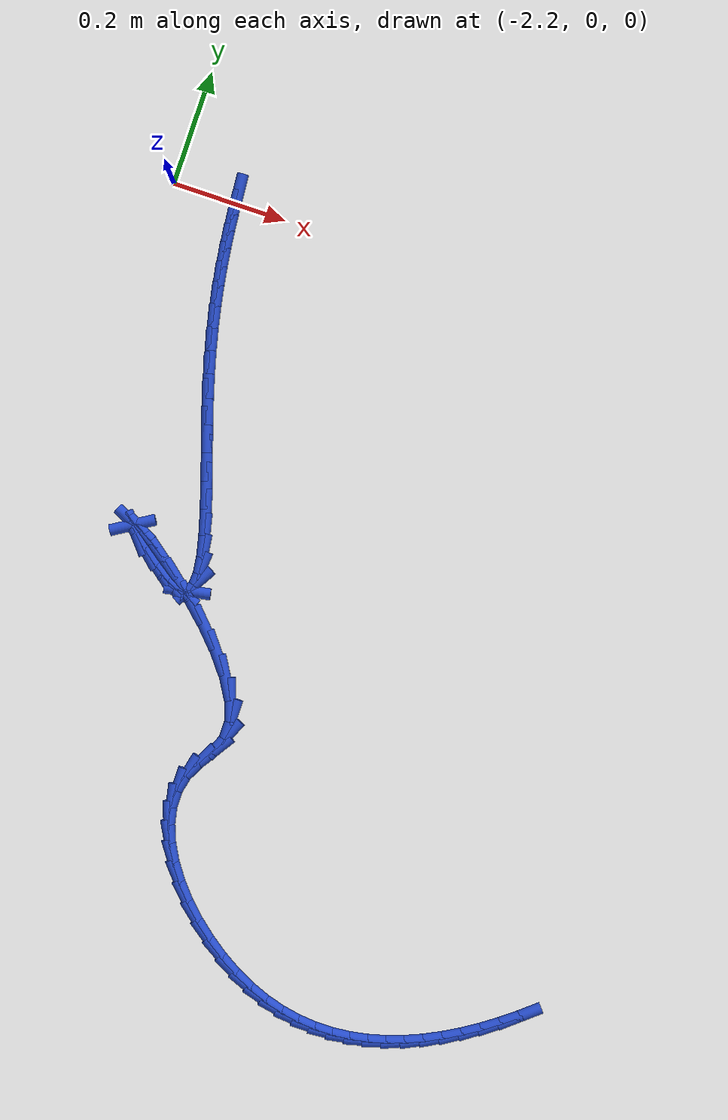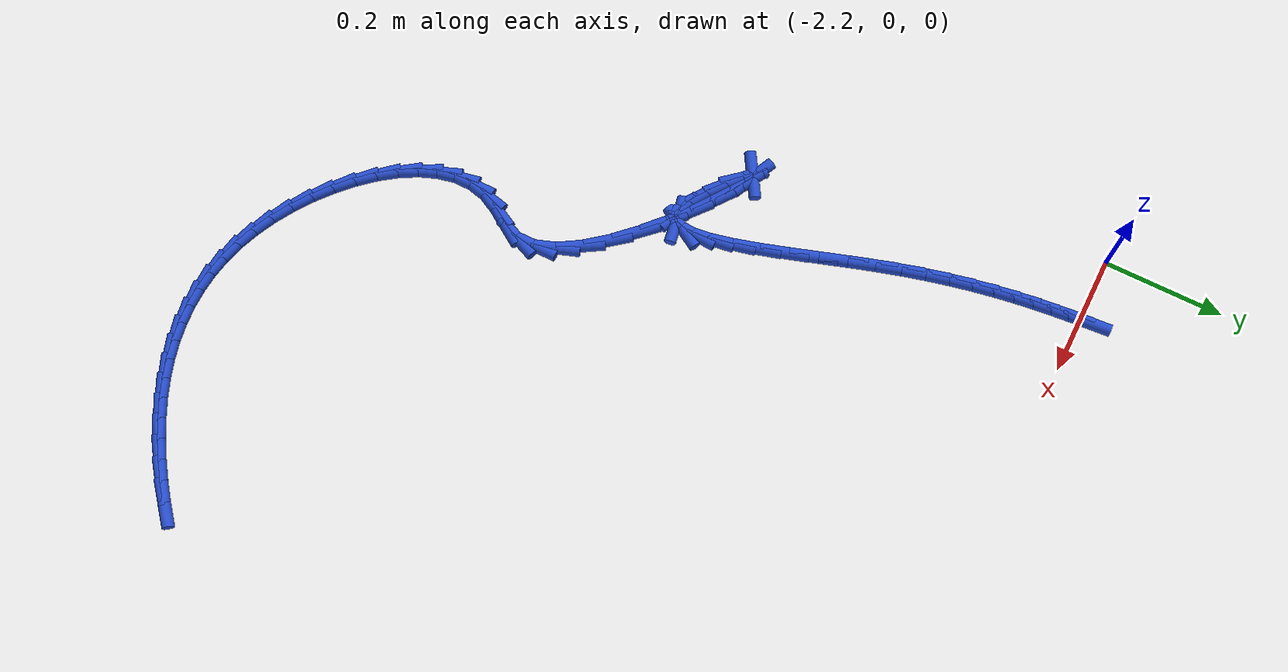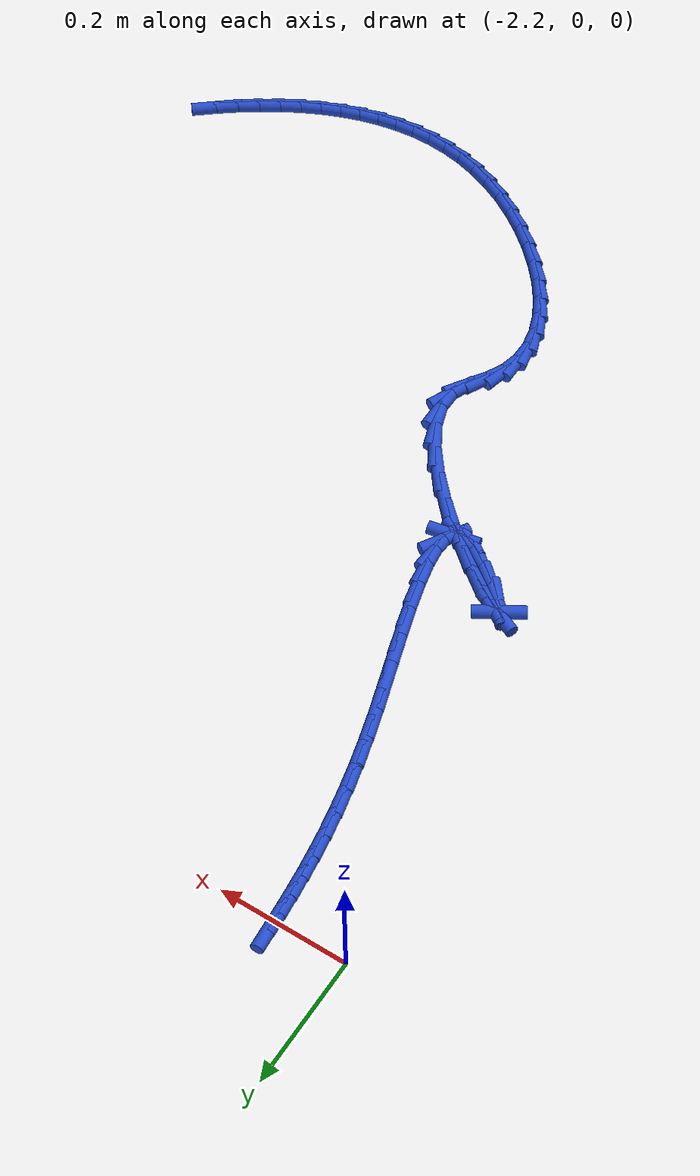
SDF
<sdf version="1.6">
 <world name="default">
  <model name="ground_plane">
   <static>1</static>
   <link name="link">
    <collision name="collision">
     <geometry><plane><normal>0 0 1</normal><size>100 100</size></plane></geometry>
     <surface><friction><ode><mu>100</mu><mu2>50</mu2></ode></friction></surface>
    </collision>
    <visual name="visual">
     <cast_shadows>0</cast_shadows>
     <geometry><plane><normal>0 0 1</normal><size>100 100</size></plane></geometry>
     <material>
      <script><uri>file://media/materials/scripts/gazebo.material</uri><name>Gazebo/WhiteGlow</name></script>
     </material>
    </visual>
   </link>
  </model>
  <model name="line">
   <link name="link_136">
    <pose>-2.089938716023968 0.010401560534139806 0.01 0 1.57 -1.4912944170080327</pose>
    <collision name="collision">
     <geometry><cylinder><radius>0.01</radius><length>0.08</length></cylinder></geometry>
    </collision>
    <visual name="visual">
     <material>
      <script><name>Gazebo/Blue</name><uri>file://media/materials/scripts/gazebo.material</uri></script>
     </material>
     <geometry><cylinder><radius>0.01</radius><length>0.08</length></cylinder></geometry>
    </visual>
   </link>
   <link name="link_137">
    <pose>-2.08771679037248 -0.017487611146496496 0.01 0 1.57 -1.4781853414094224</pose>
    <collision name="collision">
     <geometry><cylinder><radius>0.01</radius><length>0.08</length></cylinder></geometry>
    </collision>
    <visual name="visual">
     <material>
      <script><name>Gazebo/Blue</name><uri>file://media/materials/scripts/gazebo.material</uri></script>
     </material>
     <geometry><cylinder><radius>0.01</radius><length>0.08</length></cylinder></geometry>
    </visual>
   </link>
   <link name="link_138">
    <pose>-2.0850268311052695 -0.04645031406770122 0.01 0 1.57 -1.4609850899774468</pose>
    <collision name="collision">
     <geometry><cylinder><radius>0.01</radius><length>0.08</length></cylinder></geometry>
    </collision>
    <visual name="visual">
     <material>
      <script><name>Gazebo/Blue</name><uri>file://media/materials/scripts/gazebo.material</uri></script>
     </material>
     <geometry><cylinder><radius>0.01</radius><length>0.08</length></cylinder></geometry>
    </visual>
   </link>
   <link name="link_139">
    <pose>-2.0816976370552793 -0.07664578105356813 0.01 0 1.57 -1.4404860216812314</pose>
    <collision name="collision">
     <geometry><cylinder><radius>0.01</radius><length>0.08</length></cylinder></geometry>
    </collision>
    <visual name="visual">
     <material>
      <script><name>Gazebo/Blue</name><uri>file://media/materials/scripts/gazebo.material</uri></script>
     </material>
     <geometry><cylinder><radius>0.01</radius><length>0.08</length></cylinder></geometry>
    </visual>
   </link>
   <link name="link_140">
    <pose>-2.077558007055453 -0.10823324492819353 0.01 0 1.57 -1.4174688704919653</pose>
    <collision name="collision">
     <geometry><cylinder><radius>0.01</radius><length>0.08</length></cylinder></geometry>
    </collision>
    <visual name="visual">
     <material>
      <script><name>Gazebo/Blue</name><uri>file://media/materials/scripts/gazebo.material</uri></script>
     </material>
     <geometry><cylinder><radius>0.01</radius><length>0.08</length></cylinder></geometry>
    </visual>
   </link>
   <link name="link_141">
    <pose>-2.0724367399387296 -0.14137193851567376 0.01 0 1.57 -1.392668442736374</pose>
    <collision name="collision">
     <geometry><cylinder><radius>0.01</radius><length>0.08</length></cylinder></geometry>
    </collision>
    <visual name="visual">
     <material>
      <script><name>Gazebo/Blue</name><uri>file://media/materials/scripts/gazebo.material</uri></script>
     </material>
     <geometry><cylinder><radius>0.01</radius><length>0.08</length></cylinder></geometry>
    </visual>
   </link>
   <link name="link_142">
    <pose>-2.066162634538055 -0.17622109464010252 0.01 0 1.57 -1.3667485464762408</pose>
    <collision name="collision">
     <geometry><cylinder><radius>0.01</radius><length>0.08</length></cylinder></geometry>
    </collision>
    <visual name="visual">
     <material>
      <script><name>Gazebo/Blue</name><uri>file://media/materials/scripts/gazebo.material</uri></script>
     </material>
     <geometry><cylinder><radius>0.01</radius><length>0.08</length></cylinder></geometry>
    </visual>
   </link>
   <link name="link_143">
    <pose>-2.0585644896863684 -0.21293994612557715 0.01 0 1.57 -1.3402862579272024</pose>
    <collision name="collision">
     <geometry><cylinder><radius>0.01</radius><length>0.08</length></cylinder></geometry>
    </collision>
    <visual name="visual">
     <material>
      <script><name>Gazebo/Blue</name><uri>file://media/materials/scripts/gazebo.material</uri></script>
     </material>
     <geometry><cylinder><radius>0.01</radius><length>0.08</length></cylinder></geometry>
    </visual>
   </link>
   <link name="link_144">
    <pose>-2.0494711042166136 -0.25168772579619103 0.01 0 1.57 -1.3137648085607625</pose>
    <collision name="collision">
     <geometry><cylinder><radius>0.01</radius><length>0.08</length></cylinder></geometry>
    </collision>
    <visual name="visual">
     <material>
      <script><name>Gazebo/Blue</name><uri>file://media/materials/scripts/gazebo.material</uri></script>
     </material>
     <geometry><cylinder><radius>0.01</radius><length>0.08</length></cylinder></geometry>
    </visual>
   </link>
   <link name="link_145">
    <pose>-2.0387112769617324 -0.29262366647604193 0.01 0 1.57 -1.28768892763078</pose>
    <collision name="collision">
     <geometry><cylinder><radius>0.01</radius><length>0.08</length></cylinder></geometry>
    </collision>
    <visual name="visual">
     <material>
      <script><name>Gazebo/Blue</name><uri>file://media/materials/scripts/gazebo.material</uri></script>
     </material>
     <geometry><cylinder><radius>0.01</radius><length>0.08</length></cylinder></geometry>
    </visual>
   </link>
   <link name="link_146">
    <pose>-2.026122621911833 -0.335895294488658 0.01 0 1.57 -1.2674059354344696</pose>
    <collision name="collision">
     <geometry><cylinder><radius>0.01</radius><length>0.08</length></cylinder></geometry>
    </collision>
    <visual name="visual">
     <material>
      <script><name>Gazebo/Blue</name><uri>file://media/materials/scripts/gazebo.material</uri></script>
     </material>
     <geometry><cylinder><radius>0.01</radius><length>0.08</length></cylinder></geometry>
    </visual>
   </link>
   <link name="link_147">
    <pose>-2.0119810615943288 -0.38106806381976405 0.01 0 1.57 -1.258508735228982</pose>
    <collision name="collision">
     <geometry><cylinder><radius>0.01</radius><length>0.08</length></cylinder></geometry>
    </collision>
    <visual name="visual">
     <material>
      <script><name>Gazebo/Blue</name><uri>file://media/materials/scripts/gazebo.material</uri></script>
     </material>
     <geometry><cylinder><radius>0.01</radius><length>0.08</length></cylinder></geometry>
    </visual>
   </link>
   <link name="link_148">
    <pose>-1.9971943667853607 -0.42686833599857105 0.01 0 1.57 -1.2601587727564447</pose>
    <collision name="collision">
     <geometry><cylinder><radius>0.01</radius><length>0.08</length></cylinder></geometry>
    </collision>
    <visual name="visual">
     <material>
      <script><name>Gazebo/Blue</name><uri>file://media/materials/scripts/gazebo.material</uri></script>
     </material>
     <geometry><cylinder><radius>0.01</radius><length>0.08</length></cylinder></geometry>
    </visual>
   </link>
   <link name="link_149">
    <pose>-1.9827194617152974 -0.4719571969240524 0.01 0 1.57 -1.2730709342893263</pose>
    <collision name="collision">
     <geometry><cylinder><radius>0.01</radius><length>0.08</length></cylinder></geometry>
    </collision>
    <visual name="visual">
     <material>
      <script><name>Gazebo/Blue</name><uri>file://media/materials/scripts/gazebo.material</uri></script>
     </material>
     <geometry><cylinder><radius>0.01</radius><length>0.08</length></cylinder></geometry>
    </visual>
   </link>
   <link name="link_150">
    <pose>-1.9695132706145082 -0.5149957324951766 0.01 0 1.57 -1.3006256095896807</pose>
    <collision name="collision">
     <geometry><cylinder><radius>0.01</radius><length>0.08</length></cylinder></geometry>
    </collision>
    <visual name="visual">
     <material>
      <script><name>Gazebo/Blue</name><uri>file://media/materials/scripts/gazebo.material</uri></script>
     </material>
     <geometry><cylinder><radius>0.01</radius><length>0.08</length></cylinder></geometry>
    </visual>
   </link>
   <link name="link_151">
    <pose>-1.958532717713361 -0.5546450286109155 0.01 0 1.57 -1.35109784729476</pose>
    <collision name="collision">
     <geometry><cylinder><radius>0.01</radius><length>0.08</length></cylinder></geometry>
    </collision>
    <visual name="visual">
     <material>
      <script><name>Gazebo/Blue</name><uri>file://media/materials/scripts/gazebo.material</uri></script>
     </material>
     <geometry><cylinder><radius>0.01</radius><length>0.08</length></cylinder></geometry>
    </visual>
   </link>
   <link name="link_152">
    <pose>-1.9507347272422242 -0.5895661711702413 0.01 0 1.57 -1.444675998089071</pose>
    <collision name="collision">
     <geometry><cylinder><radius>0.01</radius><length>0.08</length></cylinder></geometry>
    </collision>
    <visual name="visual">
     <material>
      <script><name>Gazebo/Blue</name><uri>file://media/materials/scripts/gazebo.material</uri></script>
     </material>
     <geometry><cylinder><radius>0.01</radius><length>0.08</length></cylinder></geometry>
    </visual>
   </link>
   <link name="link_153">
    <pose>-1.9470762234314658 -0.6184202460721225 0.01 0 1.57 1.5038552415240758</pose>
    <collision name="collision">
     <geometry><cylinder><radius>0.01</radius><length>0.08</length></cylinder></geometry>
    </collision>
    <visual name="visual">
     <material>
      <script><name>Gazebo/Blue</name><uri>file://media/materials/scripts/gazebo.material</uri></script>
     </material>
     <geometry><cylinder><radius>0.01</radius><length>0.08</length></cylinder></geometry>
    </visual>
   </link>
   <link name="link_154">
    <pose>-1.948514130511456 -0.639868339215532 0.01 0 1.57 1.037975040884241</pose>
    <collision name="collision">
     <geometry><cylinder><radius>0.01</radius><length>0.08</length></cylinder></geometry>
    </collision>
    <visual name="visual">
     <material>
      <script><name>Gazebo/Blue</name><uri>file://media/materials/scripts/gazebo.material</uri></script>
     </material>
     <geometry><cylinder><radius>0.01</radius><length>0.08</length></cylinder></geometry>
    </visual>
   </link>
   <link name="link_155">
    <pose>-1.9560053727125615 -0.652571536499439 0.01 0 1.57 0.17870183745636573</pose>
    <collision name="collision">
     <geometry><cylinder><radius>0.01</radius><length>0.08</length></cylinder></geometry>
    </collision>
    <visual name="visual">
     <material>
      <script><name>Gazebo/Blue</name><uri>file://media/materials/scripts/gazebo.material</uri></script>
     </material>
     <geometry><cylinder><radius>0.01</radius><length>0.08</length></cylinder></geometry>
    </visual>
   </link>
   <link name="link_156">
    <pose>-1.9705068742651521 -0.6551909238228153 0.01 0 1.57 -0.3709738212493369</pose>
    <collision name="collision">
     <geometry><cylinder><radius>0.01</radius><length>0.08</length></cylinder></geometry>
    </collision>
    <visual name="visual">
     <material>
      <script><name>Gazebo/Blue</name><uri>file://media/materials/scripts/gazebo.material</uri></script>
     </material>
     <geometry><cylinder><radius>0.01</radius><length>0.08</length></cylinder></geometry>
    </visual>
   </link>
   <link name="link_157">
    <pose>-1.9928779090584368 -0.6464889513246896 0.01 0 1.57 -0.5726798921989834</pose>
    <collision name="collision">
     <geometry><cylinder><radius>0.01</radius><length>0.08</length></cylinder></geometry>
    </collision>
    <visual name="visual">
     <material>
      <script><name>Gazebo/Blue</name><uri>file://media/materials/scripts/gazebo.material</uri></script>
     </material>
     <geometry><cylinder><radius>0.01</radius><length>0.08</length></cylinder></geometry>
    </visual>
   </link>
   <link name="link_158">
    <pose>-2.0209033922897697 -0.6284193537701499 0.01 0 1.57 -0.6625783389256091</pose>
    <collision name="collision">
     <geometry><cylinder><radius>0.01</radius><length>0.08</length></cylinder></geometry>
    </collision>
    <visual name="visual">
     <material>
      <script><name>Gazebo/Blue</name><uri>file://media/materials/scripts/gazebo.material</uri></script>
     </material>
     <geometry><cylinder><radius>0.01</radius><length>0.08</length></cylinder></geometry>
    </visual>
   </link>
   <link name="link_159">
    <pose>-2.048748165694733 -0.6066936202859774 0.01 0 1.57 -0.7327050873647758</pose>
    <collision name="collision">
     <geometry><cylinder><radius>0.01</radius><length>0.08</length></cylinder></geometry>
    </collision>
    <visual name="visual">
     <material>
      <script><name>Gazebo/Blue</name><uri>file://media/materials/scripts/gazebo.material</uri></script>
     </material>
     <geometry><cylinder><radius>0.01</radius><length>0.08</length></cylinder></geometry>
    </visual>
   </link>
   <link name="link_160">
    <pose>-2.0703693634275124 -0.5872388472451042 0.01 0 1.57 -0.8720541100494142</pose>
    <collision name="collision">
     <geometry><cylinder><radius>0.01</radius><length>0.08</length></cylinder></geometry>
    </collision>
    <visual name="visual">
     <material>
      <script><name>Gazebo/Blue</name><uri>file://media/materials/scripts/gazebo.material</uri></script>
     </material>
     <geometry><cylinder><radius>0.01</radius><length>0.08</length></cylinder></geometry>
    </visual>
   </link>
   <link name="link_161">
    <pose>-2.080084035186754 -0.5756756964091485 0.01 0 1.57 0.5495292453223108</pose>
    <collision name="collision">
     <geometry><cylinder><radius>0.01</radius><length>0.08</length></cylinder></geometry>
    </collision>
    <visual name="visual">
     <material>
      <script><name>Gazebo/Blue</name><uri>file://media/materials/scripts/gazebo.material</uri></script>
     </material>
     <geometry><cylinder><radius>0.01</radius><length>0.08</length></cylinder></geometry>
    </visual>
   </link>
   <link name="link_162">
    <pose>-2.076835421734241 -0.5736860581192639 0.01 0 1.57 -0.4350161750732789</pose>
    <collision name="collision">
     <geometry><cylinder><radius>0.01</radius><length>0.08</length></cylinder></geometry>
    </collision>
    <visual name="visual">
     <material>
      <script><name>Gazebo/Blue</name><uri>file://media/materials/scripts/gazebo.material</uri></script>
     </material>
     <geometry><cylinder><radius>0.01</radius><length>0.08</length></cylinder></geometry>
    </visual>
   </link>
   <link name="link_163">
    <pose>-2.06277573205305 -0.5802196847338187 0.01 0 1.57 -0.5519995203783601</pose>
    <collision name="collision">
     <geometry><cylinder><radius>0.01</radius><length>0.08</length></cylinder></geometry>
    </collision>
    <visual name="visual">
     <material>
      <script><name>Gazebo/Blue</name><uri>file://media/materials/scripts/gazebo.material</uri></script>
     </material>
     <geometry><cylinder><radius>0.01</radius><length>0.08</length></cylinder></geometry>
    </visual>
   </link>
   <link name="link_164">
    <pose>-2.0401217037708506 -0.5941713884719503 0.01 0 1.57 -0.6093943686930936</pose>
    <collision name="collision">
     <geometry><cylinder><radius>0.01</radius><length>0.08</length></cylinder></geometry>
    </collision>
    <visual name="visual">
     <material>
      <script><name>Gazebo/Blue</name><uri>file://media/materials/scripts/gazebo.material</uri></script>
     </material>
     <geometry><cylinder><radius>0.01</radius><length>0.08</length></cylinder></geometry>
    </visual>
   </link>
   <link name="link_165">
    <pose>-2.011090074515308 -0.6144359815527979 0.01 0 1.57 -0.6545515482586708</pose>
    <collision name="collision">
     <geometry><cylinder><radius>0.01</radius><length>0.08</length></cylinder></geometry>
    </collision>
    <visual name="visual">
     <material>
      <script><name>Gazebo/Blue</name><uri>file://media/materials/scripts/gazebo.material</uri></script>
     </material>
     <geometry><cylinder><radius>0.01</radius><length>0.08</length></cylinder></geometry>
    </visual>
   </link>
   <link name="link_166">
    <pose>-1.977897581914093 -0.6399082761954988 0.01 0 1.57 -0.6996609844200172</pose>
    <collision name="collision">
     <geometry><cylinder><radius>0.01</radius><length>0.08</length></cylinder></geometry>
    </collision>
    <visual name="visual">
     <material>
      <script><name>Gazebo/Blue</name><uri>file://media/materials/scripts/gazebo.material</uri></script>
     </material>
     <geometry><cylinder><radius>0.01</radius><length>0.08</length></cylinder></geometry>
    </visual>
   </link>
   <link name="link_167">
    <pose>-1.9427609635948717 -0.6694830846191926 0.01 0 1.57 -0.751425427551624</pose>
    <collision name="collision">
     <geometry><cylinder><radius>0.01</radius><length>0.08</length></cylinder></geometry>
    </collision>
    <visual name="visual">
     <material>
      <script><name>Gazebo/Blue</name><uri>file://media/materials/scripts/gazebo.material</uri></script>
     </material>
     <geometry><cylinder><radius>0.01</radius><length>0.08</length></cylinder></geometry>
    </visual>
   </link>
   <link name="link_168">
    <pose>-1.907896957185313 -0.7020552190430158 0.01 0 1.57 -0.8166514372859707</pose>
    <collision name="collision">
     <geometry><cylinder><radius>0.01</radius><length>0.08</length></cylinder></geometry>
    </collision>
    <visual name="visual">
     <material>
      <script><name>Gazebo/Blue</name><uri>file://media/materials/scripts/gazebo.material</uri></script>
     </material>
     <geometry><cylinder><radius>0.01</radius><length>0.08</length></cylinder></geometry>
    </visual>
   </link>
   <link name="link_169">
    <pose>-1.8755223003130843 -0.7365194916861089 0.01 0 1.57 -0.9053327823958571</pose>
    <collision name="collision">
     <geometry><cylinder><radius>0.01</radius><length>0.08</length></cylinder></geometry>
    </collision>
    <visual name="visual">
     <material>
      <script><name>Gazebo/Blue</name><uri>file://media/materials/scripts/gazebo.material</uri></script>
     </material>
     <geometry><cylinder><radius>0.01</radius><length>0.08</length></cylinder></geometry>
    </visual>
   </link>
   <link name="link_170">
    <pose>-1.8478537306058547 -0.771770714767608 0.01 0 1.57 -1.0348944102733586</pose>
    <collision name="collision">
     <geometry><cylinder><radius>0.01</radius><length>0.08</length></cylinder></geometry>
    </collision>
    <visual name="visual">
     <material>
      <script><name>Gazebo/Blue</name><uri>file://media/materials/scripts/gazebo.material</uri></script>
     </material>
     <geometry><cylinder><radius>0.01</radius><length>0.08</length></cylinder></geometry>
    </visual>
   </link>
   <link name="link_171">
    <pose>-1.8271079856912906 -0.8067037005066521 0.01 0 1.57 -1.2373729762302903</pose>
    <collision name="collision">
     <geometry><cylinder><radius>0.01</radius><length>0.08</length></cylinder></geometry>
    </collision>
    <visual name="visual">
     <material>
      <script><name>Gazebo/Blue</name><uri>file://media/materials/scripts/gazebo.material</uri></script>
     </material>
     <geometry><cylinder><radius>0.01</radius><length>0.08</length></cylinder></geometry>
    </visual>
   </link>
   <link name="link_172">
    <pose>-1.8155018031970611 -0.840213261122381 0.01 0 1.57 -1.5627308205344923</pose>
    <collision name="collision">
     <geometry><cylinder><radius>0.01</radius><length>0.08</length></cylinder></geometry>
    </collision>
    <visual name="visual">
     <material>
      <script><name>Gazebo/Blue</name><uri>file://media/materials/scripts/gazebo.material</uri></script>
     </material>
     <geometry><cylinder><radius>0.01</radius><length>0.08</length></cylinder></geometry>
    </visual>
   </link>
   <link name="link_173">
    <pose>-1.8152519207508333 -0.8711942088339307 0.01 0 1.57 1.1673908263182529</pose>
    <collision name="collision">
     <geometry><cylinder><radius>0.01</radius><length>0.08</length></cylinder></geometry>
    </collision>
    <visual name="visual">
     <material>
      <script><name>Gazebo/Blue</name><uri>file://media/materials/scripts/gazebo.material</uri></script>
     </material>
     <geometry><cylinder><radius>0.01</radius><length>0.08</length></cylinder></geometry>
    </visual>
   </link>
   <link name="link_174">
    <pose>-1.8271100473666373 -0.8989771468217486 0.01 0 1.57 0.9902138751379691</pose>
    <collision name="collision">
     <geometry><cylinder><radius>0.01</radius><length>0.08</length></cylinder></geometry>
    </collision>
    <visual name="visual">
     <material>
      <script><name>Gazebo/Blue</name><uri>file://media/materials/scripts/gazebo.material</uri></script>
     </material>
     <geometry><cylinder><radius>0.01</radius><length>0.08</length></cylinder></geometry>
    </visual>
   </link>
   <link name="link_175">
    <pose>-1.8442729119431982 -0.9251400009577608 0.01 0 1.57 1.1004679830539716</pose>
    <collision name="collision">
     <geometry><cylinder><radius>0.01</radius><length>0.08</length></cylinder></geometry>
    </collision>
    <visual name="visual">
     <material>
      <script><name>Gazebo/Blue</name><uri>file://media/materials/scripts/gazebo.material</uri></script>
     </material>
     <geometry><cylinder><radius>0.01</radius><length>0.08</length></cylinder></geometry>
    </visual>
   </link>
   <link name="link_176">
    <pose>-1.8578689449899628 -0.9518838912197548 0.01 0 1.57 1.3437132139583328</pose>
    <collision name="collision">
     <geometry><cylinder><radius>0.01</radius><length>0.08</length></cylinder></geometry>
    </collision>
    <visual name="visual">
     <material>
      <script><name>Gazebo/Blue</name><uri>file://media/materials/scripts/gazebo.material</uri></script>
     </material>
     <geometry><cylinder><radius>0.01</radius><length>0.08</length></cylinder></geometry>
    </visual>
   </link>
   <link name="link_177">
    <pose>-1.8643526012955034 -0.9799433281254518 0.01 0 1.57 -1.5672184923563488</pose>
    <collision name="collision">
     <geometry><cylinder><radius>0.01</radius><length>0.08</length></cylinder></geometry>
    </collision>
    <visual name="visual">
     <material>
      <script><name>Gazebo/Blue</name><uri>file://media/materials/scripts/gazebo.material</uri></script>
     </material>
     <geometry><cylinder><radius>0.01</radius><length>0.08</length></cylinder></geometry>
    </visual>
   </link>
   <link name="link_178">
    <pose>-1.864248884508295 -1.0089319094679998 0.01 0 1.57 -1.3681096853751753</pose>
    <collision name="collision">
     <geometry><cylinder><radius>0.01</radius><length>0.08</length></cylinder></geometry>
    </collision>
    <visual name="visual">
     <material>
      <script><name>Gazebo/Blue</name><uri>file://media/materials/scripts/gazebo.material</uri></script>
     </material>
     <geometry><cylinder><radius>0.01</radius><length>0.08</length></cylinder></geometry>
    </visual>
   </link>
   <link name="link_179">
    <pose>-1.8581857707142653 -1.0384348773766283 0.01 0 1.57 -1.2033600063674497</pose>
    <collision name="collision">
     <geometry><cylinder><radius>0.01</radius><length>0.08</length></cylinder></geometry>
    </collision>
    <visual name="visual">
     <material>
      <script><name>Gazebo/Blue</name><uri>file://media/materials/scripts/gazebo.material</uri></script>
     </material>
     <geometry><cylinder><radius>0.01</radius><length>0.08</length></cylinder></geometry>
    </visual>
   </link>
   <link name="link_180">
    <pose>-1.8467912359993441 -1.0680374739805716 0.01 0 1.57 -1.0682186422289592</pose>
    <collision name="collision">
     <geometry><cylinder><radius>0.01</radius><length>0.08</length></cylinder></geometry>
    </collision>
    <visual name="visual">
     <material>
      <script><name>Gazebo/Blue</name><uri>file://media/materials/scripts/gazebo.material</uri></script>
     </material>
     <geometry><cylinder><radius>0.01</radius><length>0.08</length></cylinder></geometry>
    </visual>
   </link>
   <link name="link_181">
    <pose>-1.8306932564494598 -1.0973249414090587 0.01 0 1.57 -0.9557792372119027</pose>
    <collision name="collision">
     <geometry><cylinder><radius>0.01</radius><length>0.08</length></cylinder></geometry>
    </collision>
    <visual name="visual">
     <material>
      <script><name>Gazebo/Blue</name><uri>file://media/materials/scripts/gazebo.material</uri></script>
     </material>
     <geometry><cylinder><radius>0.01</radius><length>0.08</length></cylinder></geometry>
    </visual>
   </link>
   <link name="link_182">
    <pose>-1.810519808150542 -1.1258825217913229 0.01 0 1.57 -0.8595653490417119</pose>
    <collision name="collision">
     <geometry><cylinder><radius>0.01</radius><length>0.08</length></cylinder></geometry>
    </collision>
    <visual name="visual">
     <material>
      <script><name>Gazebo/Blue</name><uri>file://media/materials/scripts/gazebo.material</uri></script>
     </material>
     <geometry><cylinder><radius>0.01</radius><length>0.08</length></cylinder></geometry>
    </visual>
   </link>
   <link name="link_183">
    <pose>-1.7868988671885178 -1.1532954572565957 0.01 0 1.57 -0.774175072245576</pose>
    <collision name="collision">
     <geometry><cylinder><radius>0.01</radius><length>0.08</length></cylinder></geometry>
    </collision>
    <visual name="visual">
     <material>
      <script><name>Gazebo/Blue</name><uri>file://media/materials/scripts/gazebo.material</uri></script>
     </material>
     <geometry><cylinder><radius>0.01</radius><length>0.08</length></cylinder></geometry>
    </visual>
   </link>
   <link name="link_184">
    <pose>-1.7604584096493179 -1.179148989934108 0.01 0 1.57 -0.6951374740237422</pose>
    <collision name="collision">
     <geometry><cylinder><radius>0.01</radius><length>0.08</length></cylinder></geometry>
    </collision>
    <visual name="visual">
     <material>
      <script><name>Gazebo/Blue</name><uri>file://media/materials/scripts/gazebo.material</uri></script>
     </material>
     <geometry><cylinder><radius>0.01</radius><length>0.08</length></cylinder></geometry>
    </visual>
   </link>
   <link name="link_185">
    <pose>-1.7318264116188695 -1.2030283619530926 0.01 0 1.57 -0.6185412017986114</pose>
    <collision name="collision">
     <geometry><cylinder><radius>0.01</radius><length>0.08</length></cylinder></geometry>
    </collision>
    <visual name="visual">
     <material>
      <script><name>Gazebo/Blue</name><uri>file://media/materials/scripts/gazebo.material</uri></script>
     </material>
     <geometry><cylinder><radius>0.01</radius><length>0.08</length></cylinder></geometry>
    </visual>
   </link>
   <link name="link_186">
    <pose>-1.7016308491831025 -1.224518815442779 0.01 0 1.57 -0.5406104785901522</pose>
    <collision name="collision">
     <geometry><cylinder><radius>0.01</radius><length>0.08</length></cylinder></geometry>
    </collision>
    <visual name="visual">
     <material>
      <script><name>Gazebo/Blue</name><uri>file://media/materials/scripts/gazebo.material</uri></script>
     </material>
     <geometry><cylinder><radius>0.01</radius><length>0.08</length></cylinder></geometry>
    </visual>
   </link>
   <link name="link_187">
    <pose>-1.6704996984279448 -1.2432055925324015 0.01 0 1.57 -0.45734767234444385</pose>
    <collision name="collision">
     <geometry><cylinder><radius>0.01</radius><length>0.08</length></cylinder></geometry>
    </collision>
    <visual name="visual">
     <material>
      <script><name>Gazebo/Blue</name><uri>file://media/materials/scripts/gazebo.material</uri></script>
     </material>
     <geometry><cylinder><radius>0.01</radius><length>0.08</length></cylinder></geometry>
    </visual>
   </link>
   <link name="link_188">
    <pose>-1.6390508254893672 -1.2586831460247598 0.01 0 1.57 -0.36791619474654114</pose>
    <collision name="collision">
     <geometry><cylinder><radius>0.01</radius><length>0.08</length></cylinder></geometry>
    </collision>
    <visual name="visual">
     <material>
      <script><name>Gazebo/Blue</name><uri>file://media/materials/scripts/gazebo.material</uri></script>
     </material>
     <geometry><cylinder><radius>0.01</radius><length>0.08</length></cylinder></geometry>
    </visual>
   </link>
   <link name="link_189">
    <pose>-1.6076280205930251 -1.2707956256799795 0.01 0 1.57 -0.27553992520842074</pose>
    <collision name="collision">
     <geometry><cylinder><radius>0.01</radius><length>0.08</length></cylinder></geometry>
    </collision>
    <visual name="visual">
     <material>
      <script><name>Gazebo/Blue</name><uri>file://media/materials/scripts/gazebo.material</uri></script>
     </material>
     <geometry><cylinder><radius>0.01</radius><length>0.08</length></cylinder></geometry>
    </visual>
   </link>
   <link name="link_190">
    <pose>-1.576275713055094 -1.279659914123153 0.01 0 1.57 -0.1818513429760899</pose>
    <collision name="collision">
     <geometry><cylinder><radius>0.01</radius><length>0.08</length></cylinder></geometry>
    </collision>
    <visual name="visual">
     <material>
      <script><name>Gazebo/Blue</name><uri>file://media/materials/scripts/gazebo.material</uri></script>
     </material>
     <geometry><cylinder><radius>0.01</radius><length>0.08</length></cylinder></geometry>
    </visual>
   </link>
   <link name="link_191">
    <pose>-1.5450231528940384 -1.285406723084047 0.01 0 1.57 -0.0884487434569747</pose>
    <collision name="collision">
     <geometry><cylinder><radius>0.01</radius><length>0.08</length></cylinder></geometry>
    </collision>
    <visual name="visual">
     <material>
      <script><name>Gazebo/Blue</name><uri>file://media/materials/scripts/gazebo.material</uri></script>
     </material>
     <geometry><cylinder><radius>0.01</radius><length>0.08</length></cylinder></geometry>
    </visual>
   </link>
   <link name="link_192">
    <pose>-1.5138995901283263 -1.288166764292427 0.01 0 1.57 0.003100711411076077</pose>
    <collision name="collision">
     <geometry><cylinder><radius>0.01</radius><length>0.08</length></cylinder></geometry>
    </collision>
    <visual name="visual">
     <material>
      <script><name>Gazebo/Blue</name><uri>file://media/materials/scripts/gazebo.material</uri></script>
     </material>
     <geometry><cylinder><radius>0.01</radius><length>0.08</length></cylinder></geometry>
    </visual>
   </link>
   <link name="link_193">
    <pose>-1.482934274776423 -1.288070749478059 0.01 0 1.57 0.0914131070845812</pose>
    <collision name="collision">
     <geometry><cylinder><radius>0.01</radius><length>0.08</length></cylinder></geometry>
    </collision>
    <visual name="visual">
     <material>
      <script><name>Gazebo/Blue</name><uri>file://media/materials/scripts/gazebo.material</uri></script>
     </material>
     <geometry><cylinder><radius>0.01</radius><length>0.08</length></cylinder></geometry>
    </visual>
   </link>
   <link name="link_194">
    <pose>-1.4521564568567935 -1.2852493903707085 0.01 0 1.57 0.17539757592984495</pose>
    <collision name="collision">
     <geometry><cylinder><radius>0.01</radius><length>0.08</length></cylinder></geometry>
    </collision>
    <visual name="visual">
     <material>
      <script><name>Gazebo/Blue</name><uri>file://media/materials/scripts/gazebo.material</uri></script>
     </material>
     <geometry><cylinder><radius>0.01</radius><length>0.08</length></cylinder></geometry>
    </visual>
   </link>
   <link name="link_195">
    <pose>-1.4215953863879065 -1.2798333987001425 0.01 0 1.57 0.25430606111222276</pose>
    <collision name="collision">
     <geometry><cylinder><radius>0.01</radius><length>0.08</length></cylinder></geometry>
    </collision>
    <visual name="visual">
     <material>
      <script><name>Gazebo/Blue</name><uri>file://media/materials/scripts/gazebo.material</uri></script>
     </material>
     <geometry><cylinder><radius>0.01</radius><length>0.08</length></cylinder></geometry>
    </visual>
   </link>
   <link name="link_196">
    <pose>-1.3912803133882259 -1.271953486196126 0.01 0 1.57 0.3277260019227732</pose>
    <collision name="collision">
     <geometry><cylinder><radius>0.01</radius><length>0.08</length></cylinder></geometry>
    </collision>
    <visual name="visual">
     <material>
      <script><name>Gazebo/Blue</name><uri>file://media/materials/scripts/gazebo.material</uri></script>
     </material>
     <geometry><cylinder><radius>0.01</radius><length>0.08</length></cylinder></geometry>
    </visual>
   </link>
   <link name="link_197">
    <pose>-1.3612404878762194 -1.2617403645884249 0.01 0 1.57 0.3955330299080998</pose>
    <collision name="collision">
     <geometry><cylinder><radius>0.01</radius><length>0.08</length></cylinder></geometry>
    </collision>
    <visual name="visual">
     <material>
      <script><name>Gazebo/Blue</name><uri>file://media/materials/scripts/gazebo.material</uri></script>
     </material>
     <geometry><cylinder><radius>0.01</radius><length>0.08</length></cylinder></geometry>
    </visual>
   </link>
   <link name="link_198">
    <pose>-1.3315051598703522 -1.2493247456068053 0.01 0 1.57 0.4578246711802734</pose>
    <collision name="collision">
     <geometry><cylinder><radius>0.01</radius><length>0.08</length></cylinder></geometry>
    </collision>
    <visual name="visual">
     <material>
      <script><name>Gazebo/Blue</name><uri>file://media/materials/scripts/gazebo.material</uri></script>
     </material>
     <geometry><cylinder><radius>0.01</radius><length>0.08</length></cylinder></geometry>
    </visual>
   </link>
   <link name="link_199">
    <pose>-1.302103579389092 -1.234837340981034 0.01 0 1.57 0.5148522718762997</pose>
    <collision name="collision">
     <geometry><cylinder><radius>0.01</radius><length>0.08</length></cylinder></geometry>
    </collision>
    <visual name="visual">
     <material>
      <script><name>Gazebo/Blue</name><uri>file://media/materials/scripts/gazebo.material</uri></script>
     </material>
     <geometry><cylinder><radius>0.01</radius><length>0.08</length></cylinder></geometry>
    </visual>
   </link>
   <link name="link_200">
    <pose>-1.273064996450903 -1.218408862440876 0.01 0 1.57 0.5669616127724466</pose>
    <collision name="collision">
     <geometry><cylinder><radius>0.01</radius><length>0.08</length></cylinder></geometry>
    </collision>
    <visual name="visual">
     <material>
      <script><name>Gazebo/Blue</name><uri>file://media/materials/scripts/gazebo.material</uri></script>
     </material>
     <geometry><cylinder><radius>0.01</radius><length>0.08</length></cylinder></geometry>
    </visual>
   </link>
   <link name="link_201">
    <pose>-1.2444186610742536 -1.2001700217160973 0.01 0 1.57 0.6145465101216117</pose>
    <collision name="collision">
     <geometry><cylinder><radius>0.01</radius><length>0.08</length></cylinder></geometry>
    </collision>
    <visual name="visual">
     <material>
      <script><name>Gazebo/Blue</name><uri>file://media/materials/scripts/gazebo.material</uri></script>
     </material>
     <geometry><cylinder><radius>0.01</radius><length>0.08</length></cylinder></geometry>
    </visual>
   </link>
   <link name="link_202">
    <pose>-1.2161938232776077 -1.1802515305364634 0.01 0 1.57 0.6580155801253228</pose>
    <collision name="collision">
     <geometry><cylinder><radius>0.01</radius><length>0.08</length></cylinder></geometry>
    </collision>
    <visual name="visual">
     <material>
      <script><name>Gazebo/Blue</name><uri>file://media/materials/scripts/gazebo.material</uri></script>
     </material>
     <geometry><cylinder><radius>0.01</radius><length>0.08</length></cylinder></geometry>
    </visual>
   </link>
   <link name="link_203">
    <pose>-1.1884197330794335 -1.1587841006317416 0.01 0 1.57 0.6960444467402145</pose>
    <collision name="collision">
     <geometry><cylinder><radius>0.01</radius><length>0.08</length></cylinder></geometry>
    </collision>
    <visual name="visual">
     <material>
      <script><name>Gazebo/Blue</name><uri>file://media/materials/scripts/gazebo.material</uri></script>
     </material>
     <geometry><cylinder><radius>0.01</radius><length>0.08</length></cylinder></geometry>
    </visual>
   </link>
  </model>
 </world>
</sdf>
